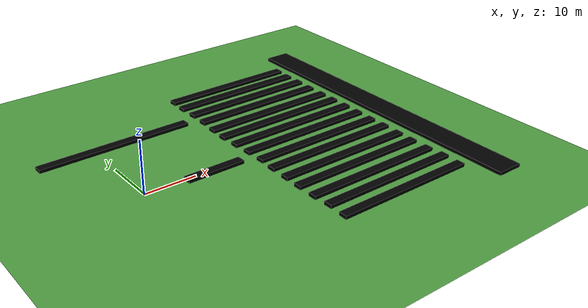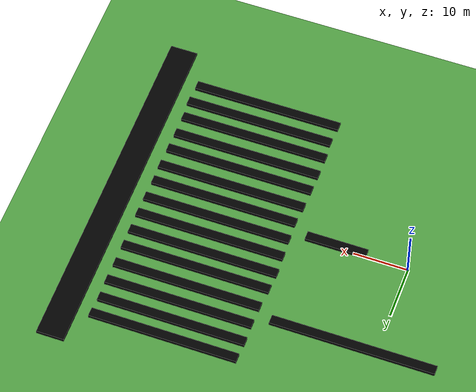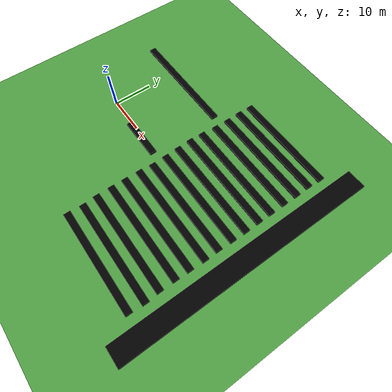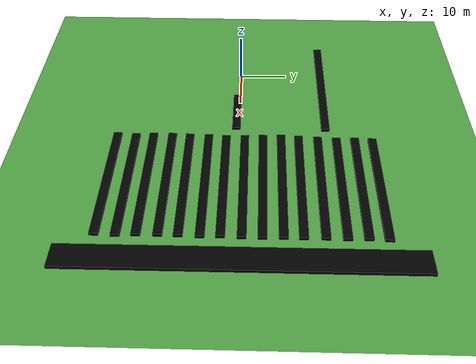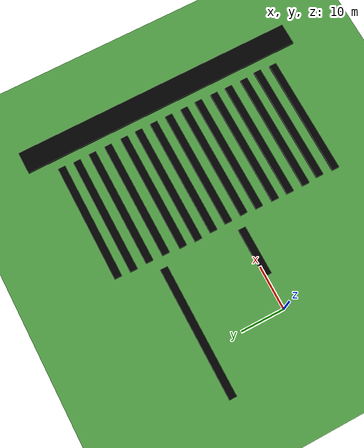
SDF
<sdf version="1.6">
 <world name="default">
  <model name="ground_plane">
   <static>1</static>
   <link name="link">
    <collision name="collision">
     <geometry><plane><normal>0 0 1</normal><size>120 120</size></plane></geometry>
     <surface><friction><ode><mu>100</mu><mu2>50</mu2></ode></friction></surface>
    </collision>
    <visual name="visual">
     <cast_shadows>0</cast_shadows>
     <geometry><plane><normal>0 0 1</normal><size>120 120</size></plane></geometry>
     <material>
      <script><uri>file://media/materials/scripts/gazebo.material</uri><name>Gazebo/Grass</name></script>
     </material>
    </visual>
   </link>
  </model>
  <model name="crop_01_8_clone_0_clone_0_clone_1_clone_clone_clone_clone">
   <link name="crop_01_0::link_0">
    <inertial>
     <mass>10.9148</mass>
     <inertia><ixx>13.7036</ixx><ixy>0</ixy><ixz>0</ixz><iyy>702.087</iyy><iyz>0</iyz><izz>715.772</izz></inertia>
    </inertial>
    <visual name="visual">
     <geometry><box><size>30 1.68705 1</size></box></geometry>
     <material>
      <ambient>0 1 0 1</ambient>
      <diffuse>0 0 0 1</diffuse>
      <specular>0.1 0.1 0.1 1</specular>
      <emissive>0 0 0 0</emissive>
     </material>
    </visual>
    <collision name="collision">
     <geometry><box><size>30 1.68705 1</size></box></geometry>
     <surface>
      <friction>
       <ode><mu>1</mu><mu2>1</mu2><fdir1>0 0 0</fdir1><slip1>0</slip1><slip2>0</slip2></ode>
       <torsional>
        <coefficient>1</coefficient>
        <patch_radius>0</patch_radius>
        <surface_radius>0</surface_radius>
        <use_patch_radius>1</use_patch_radius>
        <ode><slip>0</slip></ode>
       </torsional>
      </friction>
      <bounce><restitution_coefficient>0</restitution_coefficient><threshold>1e+06</threshold></bounce>
      <contact>
       <collide_without_contact>0</collide_without_contact>
       <collide_without_contact_bitmask>1</collide_without_contact_bitmask>
       <collide_bitmask>1</collide_bitmask>
       <ode>
        <soft_cfm>0</soft_cfm>
        <soft_erp>0.2</soft_erp>
        <kp>1e+13</kp>
        <kd>1</kd>
        <max_vel>0.01</max_vel>
        <min_depth>0</min_depth>
       </ode>
       <bullet>
        <split_impulse>1</split_impulse>
        <split_impulse_penetration_threshold>-0.01</split_impulse_penetration_threshold>
        <soft_cfm>0</soft_cfm>
        <soft_erp>0.2</soft_erp>
        <kp>1e+13</kp>
        <kd>1</kd>
       </bullet>
      </contact>
     </surface>
    </collision>
   </link>
   <static>1</static>
   <pose>4.16243 17.9486 0.050638 0 -0 0</pose>
  </model>
  <model name="crop_01_8_clone_0_clone_0_clone_1_clone_clone_clone_clone_0_clone_14">
   <link name="crop_01_0::link_0">
    <inertial>
     <mass>10.9148</mass>
     <inertia><ixx>13.7036</ixx><ixy>0</ixy><ixz>0</ixz><iyy>702.087</iyy><iyz>0</iyz><izz>715.772</izz></inertia>
    </inertial>
    <visual name="visual">
     <geometry><box><size>27.2326 1.68705 1</size></box></geometry>
     <material>
      <ambient>0 1 0 1</ambient>
      <diffuse>0 0 0 1</diffuse>
      <specular>0.1 0.1 0.1 1</specular>
      <emissive>0 0 0 0</emissive>
     </material>
    </visual>
    <collision name="collision">
     <geometry><box><size>27.2326 1.68705 1</size></box></geometry>
     <surface>
      <friction>
       <ode><mu>1</mu><mu2>1</mu2><fdir1>0 0 0</fdir1><slip1>0</slip1><slip2>0</slip2></ode>
       <torsional>
        <coefficient>1</coefficient>
        <patch_radius>0</patch_radius>
        <surface_radius>0</surface_radius>
        <use_patch_radius>1</use_patch_radius>
        <ode><slip>0</slip></ode>
       </torsional>
      </friction>
      <bounce><restitution_coefficient>0</restitution_coefficient><threshold>1e+06</threshold></bounce>
      <contact>
       <collide_without_contact>0</collide_without_contact>
       <collide_without_contact_bitmask>1</collide_without_contact_bitmask>
       <collide_bitmask>1</collide_bitmask>
       <ode>
        <soft_cfm>0</soft_cfm>
        <soft_erp>0.2</soft_erp>
        <kp>1e+13</kp>
        <kd>1</kd>
        <max_vel>0.01</max_vel>
        <min_depth>0</min_depth>
       </ode>
       <bullet>
        <split_impulse>1</split_impulse>
        <split_impulse_penetration_threshold>-0.01</split_impulse_penetration_threshold>
        <soft_cfm>0</soft_cfm>
        <soft_erp>0.2</soft_erp>
        <kp>1e+13</kp>
        <kd>1</kd>
       </bullet>
      </contact>
     </surface>
    </collision>
   </link>
   <static>1</static>
   <pose>35.2434 -2.53367 0.050638 0 -0 0</pose>
  </model>
  <model name="crop_01_8_clone_0_clone_0_clone_1_clone_clone_clone_clone_0_clone_16">
   <link name="crop_01_0::link_0">
    <inertial>
     <mass>10.9148</mass>
     <inertia><ixx>13.7036</ixx><ixy>0</ixy><ixz>0</ixz><iyy>702.087</iyy><iyz>0</iyz><izz>715.772</izz></inertia>
    </inertial>
    <visual name="visual">
     <geometry><box><size>27.4635 1.68705 1</size></box></geometry>
     <material>
      <ambient>0 1 0 1</ambient>
      <diffuse>0 0 0 1</diffuse>
      <specular>0.1 0.1 0.1 1</specular>
      <emissive>0 0 0 0</emissive>
     </material>
    </visual>
    <collision name="collision">
     <geometry><box><size>27.4635 1.68705 1</size></box></geometry>
     <surface>
      <friction>
       <ode><mu>1</mu><mu2>1</mu2><fdir1>0 0 0</fdir1><slip1>0</slip1><slip2>0</slip2></ode>
       <torsional>
        <coefficient>1</coefficient>
        <patch_radius>0</patch_radius>
        <surface_radius>0</surface_radius>
        <use_patch_radius>1</use_patch_radius>
        <ode><slip>0</slip></ode>
       </torsional>
      </friction>
      <bounce><restitution_coefficient>0</restitution_coefficient><threshold>1e+06</threshold></bounce>
      <contact>
       <collide_without_contact>0</collide_without_contact>
       <collide_without_contact_bitmask>1</collide_without_contact_bitmask>
       <collide_bitmask>1</collide_bitmask>
       <ode>
        <soft_cfm>0</soft_cfm>
        <soft_erp>0.2</soft_erp>
        <kp>1e+13</kp>
        <kd>1</kd>
        <max_vel>0.01</max_vel>
        <min_depth>0</min_depth>
       </ode>
       <bullet>
        <split_impulse>1</split_impulse>
        <split_impulse_penetration_threshold>-0.01</split_impulse_penetration_threshold>
        <soft_cfm>0</soft_cfm>
        <soft_erp>0.2</soft_erp>
        <kp>1e+13</kp>
        <kd>1</kd>
       </bullet>
      </contact>
     </surface>
    </collision>
   </link>
   <static>1</static>
   <pose>35.2291 1.25304 0.050638 0 -0 0</pose>
  </model>
  <model name="crop_01_8_clone_0_clone_0_clone_1_clone_clone_clone_clone_0_clone_17">
   <link name="crop_01_0::link_0">
    <inertial>
     <mass>10.9148</mass>
     <inertia><ixx>13.7036</ixx><ixy>0</ixy><ixz>0</ixz><iyy>702.087</iyy><iyz>0</iyz><izz>715.772</izz></inertia>
    </inertial>
    <visual name="visual">
     <geometry><box><size>27.6781 1.68705 1</size></box></geometry>
     <material>
      <ambient>0 1 0 1</ambient>
      <diffuse>0 0 0 1</diffuse>
      <specular>0.1 0.1 0.1 1</specular>
      <emissive>0 0 0 0</emissive>
     </material>
    </visual>
    <collision name="collision">
     <geometry><box><size>27.6781 1.68705 1</size></box></geometry>
     <surface>
      <friction>
       <ode><mu>1</mu><mu2>1</mu2><fdir1>0 0 0</fdir1><slip1>0</slip1><slip2>0</slip2></ode>
       <torsional>
        <coefficient>1</coefficient>
        <patch_radius>0</patch_radius>
        <surface_radius>0</surface_radius>
        <use_patch_radius>1</use_patch_radius>
        <ode><slip>0</slip></ode>
       </torsional>
      </friction>
      <bounce><restitution_coefficient>0</restitution_coefficient><threshold>1e+06</threshold></bounce>
      <contact>
       <collide_without_contact>0</collide_without_contact>
       <collide_without_contact_bitmask>1</collide_without_contact_bitmask>
       <collide_bitmask>1</collide_bitmask>
       <ode>
        <soft_cfm>0</soft_cfm>
        <soft_erp>0.2</soft_erp>
        <kp>1e+13</kp>
        <kd>1</kd>
        <max_vel>0.01</max_vel>
        <min_depth>0</min_depth>
       </ode>
       <bullet>
        <split_impulse>1</split_impulse>
        <split_impulse_penetration_threshold>-0.01</split_impulse_penetration_threshold>
        <soft_cfm>0</soft_cfm>
        <soft_erp>0.2</soft_erp>
        <kp>1e+13</kp>
        <kd>1</kd>
       </bullet>
      </contact>
     </surface>
    </collision>
   </link>
   <static>1</static>
   <pose>35.1548 4.94496 0.050638 0 -0 0</pose>
  </model>
  <model name="crop_01_8_clone_0_clone_0_clone_1_clone_clone_clone_clone_0_clone_18">
   <link name="crop_01_0::link_0">
    <inertial>
     <mass>10.9148</mass>
     <inertia><ixx>13.7036</ixx><ixy>0</ixy><ixz>0</ixz><iyy>702.087</iyy><iyz>0</iyz><izz>715.772</izz></inertia>
    </inertial>
    <visual name="visual">
     <geometry><box><size>27.7983 1.68705 1</size></box></geometry>
     <material>
      <ambient>0 1 0 1</ambient>
      <diffuse>0 0 0 1</diffuse>
      <specular>0.1 0.1 0.1 1</specular>
      <emissive>0 0 0 0</emissive>
     </material>
    </visual>
    <collision name="collision">
     <geometry><box><size>27.7983 1.68705 1</size></box></geometry>
     <surface>
      <friction>
       <ode><mu>1</mu><mu2>1</mu2><fdir1>0 0 0</fdir1><slip1>0</slip1><slip2>0</slip2></ode>
       <torsional>
        <coefficient>1</coefficient>
        <patch_radius>0</patch_radius>
        <surface_radius>0</surface_radius>
        <use_patch_radius>1</use_patch_radius>
        <ode><slip>0</slip></ode>
       </torsional>
      </friction>
      <bounce><restitution_coefficient>0</restitution_coefficient><threshold>1e+06</threshold></bounce>
      <contact>
       <collide_without_contact>0</collide_without_contact>
       <collide_without_contact_bitmask>1</collide_without_contact_bitmask>
       <collide_bitmask>1</collide_bitmask>
       <ode>
        <soft_cfm>0</soft_cfm>
        <soft_erp>0.2</soft_erp>
        <kp>1e+13</kp>
        <kd>1</kd>
        <max_vel>0.01</max_vel>
        <min_depth>0</min_depth>
       </ode>
       <bullet>
        <split_impulse>1</split_impulse>
        <split_impulse_penetration_threshold>-0.01</split_impulse_penetration_threshold>
        <soft_cfm>0</soft_cfm>
        <soft_erp>0.2</soft_erp>
        <kp>1e+13</kp>
        <kd>1</kd>
       </bullet>
      </contact>
     </surface>
    </collision>
   </link>
   <static>1</static>
   <pose>35.0428 8.67263 0.050638 0 -0 0</pose>
  </model>
  <model name="crop_01_8_clone_0_clone_0_clone_1_clone_clone_clone_clone_0_clone_19">
   <link name="crop_01_0::link_0">
    <inertial>
     <mass>10.9148</mass>
     <inertia><ixx>13.7036</ixx><ixy>0</ixy><ixz>0</ixz><iyy>702.087</iyy><iyz>0</iyz><izz>715.772</izz></inertia>
    </inertial>
    <visual name="visual">
     <geometry><box><size>27.5929 1.68705 1</size></box></geometry>
     <material>
      <ambient>0 1 0 1</ambient>
      <diffuse>0 0 0 1</diffuse>
      <specular>0.1 0.1 0.1 1</specular>
      <emissive>0 0 0 0</emissive>
     </material>
    </visual>
    <collision name="collision">
     <geometry><box><size>27.5929 1.68705 1</size></box></geometry>
     <surface>
      <friction>
       <ode><mu>1</mu><mu2>1</mu2><fdir1>0 0 0</fdir1><slip1>0</slip1><slip2>0</slip2></ode>
       <torsional>
        <coefficient>1</coefficient>
        <patch_radius>0</patch_radius>
        <surface_radius>0</surface_radius>
        <use_patch_radius>1</use_patch_radius>
        <ode><slip>0</slip></ode>
       </torsional>
      </friction>
      <bounce><restitution_coefficient>0</restitution_coefficient><threshold>1e+06</threshold></bounce>
      <contact>
       <collide_without_contact>0</collide_without_contact>
       <collide_without_contact_bitmask>1</collide_without_contact_bitmask>
       <collide_bitmask>1</collide_bitmask>
       <ode>
        <soft_cfm>0</soft_cfm>
        <soft_erp>0.2</soft_erp>
        <kp>1e+13</kp>
        <kd>1</kd>
        <max_vel>0.01</max_vel>
        <min_depth>0</min_depth>
       </ode>
       <bullet>
        <split_impulse>1</split_impulse>
        <split_impulse_penetration_threshold>-0.01</split_impulse_penetration_threshold>
        <soft_cfm>0</soft_cfm>
        <soft_erp>0.2</soft_erp>
        <kp>1e+13</kp>
        <kd>1</kd>
       </bullet>
      </contact>
     </surface>
    </collision>
   </link>
   <static>1</static>
   <pose>35.1291 12.2231 0.050638 0 -0 0</pose>
  </model>
  <model name="crop_01_8_clone_0_clone_0_clone_1_clone_clone_clone_clone_0_clone_21">
   <link name="crop_01_0::link_0">
    <inertial>
     <mass>10.9148</mass>
     <inertia><ixx>13.7036</ixx><ixy>0</ixy><ixz>0</ixz><iyy>702.087</iyy><iyz>0</iyz><izz>715.772</izz></inertia>
    </inertial>
    <visual name="visual">
     <geometry><box><size>27.2401 1.68705 1</size></box></geometry>
     <material>
      <ambient>0 1 0 1</ambient>
      <diffuse>0 0 0 1</diffuse>
      <specular>0.1 0.1 0.1 1</specular>
      <emissive>0 0 0 0</emissive>
     </material>
    </visual>
    <collision name="collision">
     <geometry><box><size>27.2401 1.68705 1</size></box></geometry>
     <surface>
      <friction>
       <ode><mu>1</mu><mu2>1</mu2><fdir1>0 0 0</fdir1><slip1>0</slip1><slip2>0</slip2></ode>
       <torsional>
        <coefficient>1</coefficient>
        <patch_radius>0</patch_radius>
        <surface_radius>0</surface_radius>
        <use_patch_radius>1</use_patch_radius>
        <ode><slip>0</slip></ode>
       </torsional>
      </friction>
      <bounce><restitution_coefficient>0</restitution_coefficient><threshold>1e+06</threshold></bounce>
      <contact>
       <collide_without_contact>0</collide_without_contact>
       <collide_without_contact_bitmask>1</collide_without_contact_bitmask>
       <collide_bitmask>1</collide_bitmask>
       <ode>
        <soft_cfm>0</soft_cfm>
        <soft_erp>0.2</soft_erp>
        <kp>1e+13</kp>
        <kd>1</kd>
        <max_vel>0.01</max_vel>
        <min_depth>0</min_depth>
       </ode>
       <bullet>
        <split_impulse>1</split_impulse>
        <split_impulse_penetration_threshold>-0.01</split_impulse_penetration_threshold>
        <soft_cfm>0</soft_cfm>
        <soft_erp>0.2</soft_erp>
        <kp>1e+13</kp>
        <kd>1</kd>
       </bullet>
      </contact>
     </surface>
    </collision>
   </link>
   <static>1</static>
   <pose>35.2717 16.1362 0.050638 0 -0 0</pose>
  </model>
  <model name="crop_01_8_clone_0_clone_0_clone_1_clone_clone_clone_clone_0_clone_22">
   <link name="crop_01_0::link_0">
    <inertial>
     <mass>10.9148</mass>
     <inertia><ixx>13.7036</ixx><ixy>0</ixy><ixz>0</ixz><iyy>702.087</iyy><iyz>0</iyz><izz>715.772</izz></inertia>
    </inertial>
    <visual name="visual">
     <geometry><box><size>27.2096 1.68705 1</size></box></geometry>
     <material>
      <ambient>0 1 0 1</ambient>
      <diffuse>0 0 0 1</diffuse>
      <specular>0.1 0.1 0.1 1</specular>
      <emissive>0 0 0 0</emissive>
     </material>
    </visual>
    <collision name="collision">
     <geometry><box><size>27.2096 1.68705 1</size></box></geometry>
     <surface>
      <friction>
       <ode><mu>1</mu><mu2>1</mu2><fdir1>0 0 0</fdir1><slip1>0</slip1><slip2>0</slip2></ode>
       <torsional>
        <coefficient>1</coefficient>
        <patch_radius>0</patch_radius>
        <surface_radius>0</surface_radius>
        <use_patch_radius>1</use_patch_radius>
        <ode><slip>0</slip></ode>
       </torsional>
      </friction>
      <bounce><restitution_coefficient>0</restitution_coefficient><threshold>1e+06</threshold></bounce>
      <contact>
       <collide_without_contact>0</collide_without_contact>
       <collide_without_contact_bitmask>1</collide_without_contact_bitmask>
       <collide_bitmask>1</collide_bitmask>
       <ode>
        <soft_cfm>0</soft_cfm>
        <soft_erp>0.2</soft_erp>
        <kp>1e+13</kp>
        <kd>1</kd>
        <max_vel>0.01</max_vel>
        <min_depth>0</min_depth>
       </ode>
       <bullet>
        <split_impulse>1</split_impulse>
        <split_impulse_penetration_threshold>-0.01</split_impulse_penetration_threshold>
        <soft_cfm>0</soft_cfm>
        <soft_erp>0.2</soft_erp>
        <kp>1e+13</kp>
        <kd>1</kd>
       </bullet>
      </contact>
     </surface>
    </collision>
   </link>
   <static>1</static>
   <pose>35.349 19.9377 0.050638 0 -0 0</pose>
  </model>
  <model name="crop_01_8_clone_0_clone_0_clone_1_clone_clone_clone_clone_0_clone_24">
   <link name="crop_01_0::link_0">
    <inertial>
     <mass>10.9148</mass>
     <inertia><ixx>13.7036</ixx><ixy>0</ixy><ixz>0</ixz><iyy>702.087</iyy><iyz>0</iyz><izz>715.772</izz></inertia>
    </inertial>
    <visual name="visual">
     <geometry><box><size>27.1998 1.68705 1</size></box></geometry>
     <material>
      <ambient>0 1 0 1</ambient>
      <diffuse>0 0 0 1</diffuse>
      <specular>0.1 0.1 0.1 1</specular>
      <emissive>0 0 0 0</emissive>
     </material>
    </visual>
    <collision name="collision">
     <geometry><box><size>27.1998 1.68705 1</size></box></geometry>
     <surface>
      <friction>
       <ode><mu>1</mu><mu2>1</mu2><fdir1>0 0 0</fdir1><slip1>0</slip1><slip2>0</slip2></ode>
       <torsional>
        <coefficient>1</coefficient>
        <patch_radius>0</patch_radius>
        <surface_radius>0</surface_radius>
        <use_patch_radius>1</use_patch_radius>
        <ode><slip>0</slip></ode>
       </torsional>
      </friction>
      <bounce><restitution_coefficient>0</restitution_coefficient><threshold>1e+06</threshold></bounce>
      <contact>
       <collide_without_contact>0</collide_without_contact>
       <collide_without_contact_bitmask>1</collide_without_contact_bitmask>
       <collide_bitmask>1</collide_bitmask>
       <ode>
        <soft_cfm>0</soft_cfm>
        <soft_erp>0.2</soft_erp>
        <kp>1e+13</kp>
        <kd>1</kd>
        <max_vel>0.01</max_vel>
        <min_depth>0</min_depth>
       </ode>
       <bullet>
        <split_impulse>1</split_impulse>
        <split_impulse_penetration_threshold>-0.01</split_impulse_penetration_threshold>
        <soft_cfm>0</soft_cfm>
        <soft_erp>0.2</soft_erp>
        <kp>1e+13</kp>
        <kd>1</kd>
       </bullet>
      </contact>
     </surface>
    </collision>
   </link>
   <static>1</static>
   <pose>35.4426 27.2396 0.050638 0 -0 0</pose>
  </model>
  <model name="crop_01_8_clone_0_clone_0_clone_1_clone_clone_clone_clone_0_clone_46_clone_1">
   <link name="crop_01_0::link_0">
    <inertial>
     <mass>10.9148</mass>
     <inertia><ixx>13.7036</ixx><ixy>0</ixy><ixz>0</ixz><iyy>702.087</iyy><iyz>0</iyz><izz>715.772</izz></inertia>
    </inertial>
    <visual name="visual">
     <geometry><box><size>65.8071 5.06569 1</size></box></geometry>
     <material>
      <ambient>0 1 0 1</ambient>
      <diffuse>0 0 0 1</diffuse>
      <specular>0.1 0.1 0.1 1</specular>
      <emissive>0 0 0 0</emissive>
     </material>
    </visual>
    <collision name="collision">
     <geometry><box><size>65.8071 5.06569 1</size></box></geometry>
     <surface>
      <friction>
       <ode><mu>1</mu><mu2>1</mu2><fdir1>0 0 0</fdir1><slip1>0</slip1><slip2>0</slip2></ode>
       <torsional>
        <coefficient>1</coefficient>
        <patch_radius>0</patch_radius>
        <surface_radius>0</surface_radius>
        <use_patch_radius>1</use_patch_radius>
        <ode><slip>0</slip></ode>
       </torsional>
      </friction>
      <bounce><restitution_coefficient>0</restitution_coefficient><threshold>1e+06</threshold></bounce>
      <contact>
       <collide_without_contact>0</collide_without_contact>
       <collide_without_contact_bitmask>1</collide_without_contact_bitmask>
       <collide_bitmask>1</collide_bitmask>
       <ode>
        <soft_cfm>0</soft_cfm>
        <soft_erp>0.2</soft_erp>
        <kp>1e+13</kp>
        <kd>1</kd>
        <max_vel>0.01</max_vel>
        <min_depth>0</min_depth>
       </ode>
       <bullet>
        <split_impulse>1</split_impulse>
        <split_impulse_penetration_threshold>-0.01</split_impulse_penetration_threshold>
        <soft_cfm>0</soft_cfm>
        <soft_erp>0.2</soft_erp>
        <kp>1e+13</kp>
        <kd>1</kd>
       </bullet>
      </contact>
     </surface>
    </collision>
   </link>
   <static>1</static>
   <pose>53.7966 1.19614 0.050638 0 -0 1.57201</pose>
  </model>
  <model name="crop_01_8_clone_0_clone_0_clone_clone_0">
   <link name="crop_01_0::link_0">
    <inertial>
     <mass>10.9148</mass>
     <inertia><ixx>13.7036</ixx><ixy>0</ixy><ixz>0</ixz><iyy>702.087</iyy><iyz>0</iyz><izz>715.772</izz></inertia>
    </inertial>
    <visual name="visual">
     <geometry><box><size>11.274 1.68705 1</size></box></geometry>
     <material>
      <ambient>0 1 0 1</ambient>
      <diffuse>0 0 0 1</diffuse>
      <specular>0.1 0.1 0.1 1</specular>
      <emissive>0 0 0 0</emissive>
     </material>
    </visual>
    <collision name="collision">
     <geometry><box><size>11.274 1.68705 1</size></box></geometry>
     <surface>
      <friction>
       <ode><mu>1</mu><mu2>1</mu2><fdir1>0 0 0</fdir1><slip1>0</slip1><slip2>0</slip2></ode>
       <torsional>
        <coefficient>1</coefficient>
        <patch_radius>0</patch_radius>
        <surface_radius>0</surface_radius>
        <use_patch_radius>1</use_patch_radius>
        <ode><slip>0</slip></ode>
       </torsional>
      </friction>
      <bounce><restitution_coefficient>0</restitution_coefficient><threshold>1e+06</threshold></bounce>
      <contact>
       <collide_without_contact>0</collide_without_contact>
       <collide_without_contact_bitmask>1</collide_without_contact_bitmask>
       <collide_bitmask>1</collide_bitmask>
       <ode>
        <soft_cfm>0</soft_cfm>
        <soft_erp>0.2</soft_erp>
        <kp>1e+13</kp>
        <kd>1</kd>
        <max_vel>0.01</max_vel>
        <min_depth>0</min_depth>
       </ode>
       <bullet>
        <split_impulse>1</split_impulse>
        <split_impulse_penetration_threshold>-0.01</split_impulse_penetration_threshold>
        <soft_cfm>0</soft_cfm>
        <soft_erp>0.2</soft_erp>
        <kp>1e+13</kp>
        <kd>1</kd>
       </bullet>
      </contact>
     </surface>
    </collision>
   </link>
   <static>1</static>
   <pose>13.4072 -0.571304 0.050638 0 -0 0</pose>
  </model>
  <model name="crop_01_8_clone_0_clone_0_clone_1_clone_clone_clone_clone_0_clone_24_clone">
   <link name="crop_01_0::link_0">
    <inertial>
     <mass>10.9148</mass>
     <inertia><ixx>13.7036</ixx><ixy>0</ixy><ixz>0</ixz><iyy>702.087</iyy><iyz>0</iyz><izz>715.772</izz></inertia>
    </inertial>
    <visual name="visual">
     <geometry><box><size>27.1998 1.68705 1</size></box></geometry>
     <material>
      <ambient>0 1 0 1</ambient>
      <diffuse>0 0 0 1</diffuse>
      <specular>0.1 0.1 0.1 1</specular>
      <emissive>0 0 0 0</emissive>
     </material>
    </visual>
    <collision name="collision">
     <geometry><box><size>27.1998 1.68705 1</size></box></geometry>
     <surface>
      <friction>
       <ode><mu>1</mu><mu2>1</mu2><fdir1>0 0 0</fdir1><slip1>0</slip1><slip2>0</slip2></ode>
       <torsional>
        <coefficient>1</coefficient>
        <patch_radius>0</patch_radius>
        <surface_radius>0</surface_radius>
        <use_patch_radius>1</use_patch_radius>
        <ode><slip>0</slip></ode>
       </torsional>
      </friction>
      <bounce><restitution_coefficient>0</restitution_coefficient><threshold>1e+06</threshold></bounce>
      <contact>
       <collide_without_contact>0</collide_without_contact>
       <collide_without_contact_bitmask>1</collide_without_contact_bitmask>
       <collide_bitmask>1</collide_bitmask>
       <ode>
        <soft_cfm>0</soft_cfm>
        <soft_erp>0.2</soft_erp>
        <kp>1e+13</kp>
        <kd>1</kd>
        <max_vel>0.01</max_vel>
        <min_depth>0</min_depth>
       </ode>
       <bullet>
        <split_impulse>1</split_impulse>
        <split_impulse_penetration_threshold>-0.01</split_impulse_penetration_threshold>
        <soft_cfm>0</soft_cfm>
        <soft_erp>0.2</soft_erp>
        <kp>1e+13</kp>
        <kd>1</kd>
       </bullet>
      </contact>
     </surface>
    </collision>
   </link>
   <static>1</static>
   <pose>35.2554 23.6815 0.050638 0 -0 0</pose>
  </model>
  <model name="crop_01_8_clone_0_clone_0_clone_1_clone_clone_clone_clone_0_clone_19_clone">
   <link name="crop_01_0::link_0">
    <inertial>
     <mass>10.9148</mass>
     <inertia><ixx>13.7036</ixx><ixy>0</ixy><ixz>0</ixz><iyy>702.087</iyy><iyz>0</iyz><izz>715.772</izz></inertia>
    </inertial>
    <visual name="visual">
     <geometry><box><size>27.5929 1.68705 1</size></box></geometry>
     <material>
      <ambient>0 1 0 1</ambient>
      <diffuse>0 0 0 1</diffuse>
      <specular>0.1 0.1 0.1 1</specular>
      <emissive>0 0 0 0</emissive>
     </material>
    </visual>
    <collision name="collision">
     <geometry><box><size>27.5929 1.68705 1</size></box></geometry>
     <surface>
      <friction>
       <ode><mu>1</mu><mu2>1</mu2><fdir1>0 0 0</fdir1><slip1>0</slip1><slip2>0</slip2></ode>
       <torsional>
        <coefficient>1</coefficient>
        <patch_radius>0</patch_radius>
        <surface_radius>0</surface_radius>
        <use_patch_radius>1</use_patch_radius>
        <ode><slip>0</slip></ode>
       </torsional>
      </friction>
      <bounce><restitution_coefficient>0</restitution_coefficient><threshold>1e+06</threshold></bounce>
      <contact>
       <collide_without_contact>0</collide_without_contact>
       <collide_without_contact_bitmask>1</collide_without_contact_bitmask>
       <collide_bitmask>1</collide_bitmask>
       <ode>
        <soft_cfm>0</soft_cfm>
        <soft_erp>0.2</soft_erp>
        <kp>1e+13</kp>
        <kd>1</kd>
        <max_vel>0.01</max_vel>
        <min_depth>0</min_depth>
       </ode>
       <bullet>
        <split_impulse>1</split_impulse>
        <split_impulse_penetration_threshold>-0.01</split_impulse_penetration_threshold>
        <soft_cfm>0</soft_cfm>
        <soft_erp>0.2</soft_erp>
        <kp>1e+13</kp>
        <kd>1</kd>
       </bullet>
      </contact>
     </surface>
    </collision>
   </link>
   <static>1</static>
   <pose>35.1454 -6.13609 0.050638 0 -0 0</pose>
  </model>
  <model name="crop_01_8_clone_0_clone_0_clone_1_clone_clone_clone_clone_0_clone_19_clone_clone">
   <link name="crop_01_0::link_0">
    <inertial>
     <mass>10.9148</mass>
     <inertia><ixx>13.7036</ixx><ixy>0</ixy><ixz>0</ixz><iyy>702.087</iyy><iyz>0</iyz><izz>715.772</izz></inertia>
    </inertial>
    <visual name="visual">
     <geometry><box><size>27.5929 1.68705 1</size></box></geometry>
     <material>
      <ambient>0 1 0 1</ambient>
      <diffuse>0 0 0 1</diffuse>
      <specular>0.1 0.1 0.1 1</specular>
      <emissive>0 0 0 0</emissive>
     </material>
    </visual>
    <collision name="collision">
     <geometry><box><size>27.5929 1.68705 1</size></box></geometry>
     <surface>
      <friction>
       <ode><mu>1</mu><mu2>1</mu2><fdir1>0 0 0</fdir1><slip1>0</slip1><slip2>0</slip2></ode>
       <torsional>
        <coefficient>1</coefficient>
        <patch_radius>0</patch_radius>
        <surface_radius>0</surface_radius>
        <use_patch_radius>1</use_patch_radius>
        <ode><slip>0</slip></ode>
       </torsional>
      </friction>
      <bounce><restitution_coefficient>0</restitution_coefficient><threshold>1e+06</threshold></bounce>
      <contact>
       <collide_without_contact>0</collide_without_contact>
       <collide_without_contact_bitmask>1</collide_without_contact_bitmask>
       <collide_bitmask>1</collide_bitmask>
       <ode>
        <soft_cfm>0</soft_cfm>
        <soft_erp>0.2</soft_erp>
        <kp>1e+13</kp>
        <kd>1</kd>
        <max_vel>0.01</max_vel>
        <min_depth>0</min_depth>
       </ode>
       <bullet>
        <split_impulse>1</split_impulse>
        <split_impulse_penetration_threshold>-0.01</split_impulse_penetration_threshold>
        <soft_cfm>0</soft_cfm>
        <soft_erp>0.2</soft_erp>
        <kp>1e+13</kp>
        <kd>1</kd>
       </bullet>
      </contact>
     </surface>
    </collision>
   </link>
   <static>1</static>
   <pose>35.0493 -10.0071 0.050638 0 -0 0</pose>
  </model>
  <model name="crop_01_8_clone_0_clone_0_clone_1_clone_clone_clone_clone_0_clone_19_clone_clone_0">
   <link name="crop_01_0::link_0">
    <inertial>
     <mass>10.9148</mass>
     <inertia><ixx>13.7036</ixx><ixy>0</ixy><ixz>0</ixz><iyy>702.087</iyy><iyz>0</iyz><izz>715.772</izz></inertia>
    </inertial>
    <visual name="visual">
     <geometry><box><size>27.5929 1.68705 1</size></box></geometry>
     <material>
      <ambient>0 1 0 1</ambient>
      <diffuse>0 0 0 1</diffuse>
      <specular>0.1 0.1 0.1 1</specular>
      <emissive>0 0 0 0</emissive>
     </material>
    </visual>
    <collision name="collision">
     <geometry><box><size>27.5929 1.68705 1</size></box></geometry>
     <surface>
      <friction>
       <ode><mu>1</mu><mu2>1</mu2><fdir1>0 0 0</fdir1><slip1>0</slip1><slip2>0</slip2></ode>
       <torsional>
        <coefficient>1</coefficient>
        <patch_radius>0</patch_radius>
        <surface_radius>0</surface_radius>
        <use_patch_radius>1</use_patch_radius>
        <ode><slip>0</slip></ode>
       </torsional>
      </friction>
      <bounce><restitution_coefficient>0</restitution_coefficient><threshold>1e+06</threshold></bounce>
      <contact>
       <collide_without_contact>0</collide_without_contact>
       <collide_without_contact_bitmask>1</collide_without_contact_bitmask>
       <collide_bitmask>1</collide_bitmask>
       <ode>
        <soft_cfm>0</soft_cfm>
        <soft_erp>0.2</soft_erp>
        <kp>1e+13</kp>
        <kd>1</kd>
        <max_vel>0.01</max_vel>
        <min_depth>0</min_depth>
       </ode>
       <bullet>
        <split_impulse>1</split_impulse>
        <split_impulse_penetration_threshold>-0.01</split_impulse_penetration_threshold>
        <soft_cfm>0</soft_cfm>
        <soft_erp>0.2</soft_erp>
        <kp>1e+13</kp>
        <kd>1</kd>
       </bullet>
      </contact>
     </surface>
    </collision>
   </link>
   <static>1</static>
   <pose>34.9689 -13.6237 0.050638 0 -0 0</pose>
  </model>
  <model name="crop_01_8_clone_0_clone_0_clone_1_clone_clone_clone_clone_0_clone_19_clone_clone_clone">
   <link name="crop_01_0::link_0">
    <inertial>
     <mass>10.9148</mass>
     <inertia><ixx>13.7036</ixx><ixy>0</ixy><ixz>0</ixz><iyy>702.087</iyy><iyz>0</iyz><izz>715.772</izz></inertia>
    </inertial>
    <visual name="visual">
     <geometry><box><size>27.5929 1.68705 1</size></box></geometry>
     <material>
      <ambient>0 1 0 1</ambient>
      <diffuse>0 0 0 1</diffuse>
      <specular>0.1 0.1 0.1 1</specular>
      <emissive>0 0 0 0</emissive>
     </material>
    </visual>
    <collision name="collision">
     <geometry><box><size>27.5929 1.68705 1</size></box></geometry>
     <surface>
      <friction>
       <ode><mu>1</mu><mu2>1</mu2><fdir1>0 0 0</fdir1><slip1>0</slip1><slip2>0</slip2></ode>
       <torsional>
        <coefficient>1</coefficient>
        <patch_radius>0</patch_radius>
        <surface_radius>0</surface_radius>
        <use_patch_radius>1</use_patch_radius>
        <ode><slip>0</slip></ode>
       </torsional>
      </friction>
      <bounce><restitution_coefficient>0</restitution_coefficient><threshold>1e+06</threshold></bounce>
      <contact>
       <collide_without_contact>0</collide_without_contact>
       <collide_without_contact_bitmask>1</collide_without_contact_bitmask>
       <collide_bitmask>1</collide_bitmask>
       <ode>
        <soft_cfm>0</soft_cfm>
        <soft_erp>0.2</soft_erp>
        <kp>1e+13</kp>
        <kd>1</kd>
        <max_vel>0.01</max_vel>
        <min_depth>0</min_depth>
       </ode>
       <bullet>
        <split_impulse>1</split_impulse>
        <split_impulse_penetration_threshold>-0.01</split_impulse_penetration_threshold>
        <soft_cfm>0</soft_cfm>
        <soft_erp>0.2</soft_erp>
        <kp>1e+13</kp>
        <kd>1</kd>
       </bullet>
      </contact>
     </surface>
    </collision>
   </link>
   <static>1</static>
   <pose>34.9686 -17.5099 0.050638 0 -0 0</pose>
  </model>
  <model name="crop_01_8_clone_0_clone_0_clone_1_clone_clone_clone_clone_0_clone_19_clone_clone_1">
   <link name="crop_01_0::link_0">
    <inertial>
     <mass>10.9148</mass>
     <inertia><ixx>13.7036</ixx><ixy>0</ixy><ixz>0</ixz><iyy>702.087</iyy><iyz>0</iyz><izz>715.772</izz></inertia>
    </inertial>
    <visual name="visual">
     <geometry><box><size>27.5929 1.68705 1</size></box></geometry>
     <material>
      <ambient>0 1 0 1</ambient>
      <diffuse>0 0 0 1</diffuse>
      <specular>0.1 0.1 0.1 1</specular>
      <emissive>0 0 0 0</emissive>
     </material>
    </visual>
    <collision name="collision">
     <geometry><box><size>27.5929 1.68705 1</size></box></geometry>
     <surface>
      <friction>
       <ode><mu>1</mu><mu2>1</mu2><fdir1>0 0 0</fdir1><slip1>0</slip1><slip2>0</slip2></ode>
       <torsional>
        <coefficient>1</coefficient>
        <patch_radius>0</patch_radius>
        <surface_radius>0</surface_radius>
        <use_patch_radius>1</use_patch_radius>
        <ode><slip>0</slip></ode>
       </torsional>
      </friction>
      <bounce><restitution_coefficient>0</restitution_coefficient><threshold>1e+06</threshold></bounce>
      <contact>
       <collide_without_contact>0</collide_without_contact>
       <collide_without_contact_bitmask>1</collide_without_contact_bitmask>
       <collide_bitmask>1</collide_bitmask>
       <ode>
        <soft_cfm>0</soft_cfm>
        <soft_erp>0.2</soft_erp>
        <kp>1e+13</kp>
        <kd>1</kd>
        <max_vel>0.01</max_vel>
        <min_depth>0</min_depth>
       </ode>
       <bullet>
        <split_impulse>1</split_impulse>
        <split_impulse_penetration_threshold>-0.01</split_impulse_penetration_threshold>
        <soft_cfm>0</soft_cfm>
        <soft_erp>0.2</soft_erp>
        <kp>1e+13</kp>
        <kd>1</kd>
       </bullet>
      </contact>
     </surface>
    </collision>
   </link>
   <static>1</static>
   <pose>35.2299 -21.1146 0.050638 0 -0 0</pose>
  </model>
  <model name="crop_01_8_clone_0_clone_0_clone_1_clone_clone_clone_clone_0_clone_19_clone_clone_clone_clone">
   <link name="crop_01_0::link_0">
    <inertial>
     <mass>10.9148</mass>
     <inertia><ixx>13.7036</ixx><ixy>0</ixy><ixz>0</ixz><iyy>702.087</iyy><iyz>0</iyz><izz>715.772</izz></inertia>
    </inertial>
    <visual name="visual">
     <geometry><box><size>27.5929 1.68705 1</size></box></geometry>
     <material>
      <ambient>0 1 0 1</ambient>
      <diffuse>0 0 0 1</diffuse>
      <specular>0.1 0.1 0.1 1</specular>
      <emissive>0 0 0 0</emissive>
     </material>
    </visual>
    <collision name="collision">
     <geometry><box><size>27.5929 1.68705 1</size></box></geometry>
     <surface>
      <friction>
       <ode><mu>1</mu><mu2>1</mu2><fdir1>0 0 0</fdir1><slip1>0</slip1><slip2>0</slip2></ode>
       <torsional>
        <coefficient>1</coefficient>
        <patch_radius>0</patch_radius>
        <surface_radius>0</surface_radius>
        <use_patch_radius>1</use_patch_radius>
        <ode><slip>0</slip></ode>
       </torsional>
      </friction>
      <bounce><restitution_coefficient>0</restitution_coefficient><threshold>1e+06</threshold></bounce>
      <contact>
       <collide_without_contact>0</collide_without_contact>
       <collide_without_contact_bitmask>1</collide_without_contact_bitmask>
       <collide_bitmask>1</collide_bitmask>
       <ode>
        <soft_cfm>0</soft_cfm>
        <soft_erp>0.2</soft_erp>
        <kp>1e+13</kp>
        <kd>1</kd>
        <max_vel>0.01</max_vel>
        <min_depth>0</min_depth>
       </ode>
       <bullet>
        <split_impulse>1</split_impulse>
        <split_impulse_penetration_threshold>-0.01</split_impulse_penetration_threshold>
        <soft_cfm>0</soft_cfm>
        <soft_erp>0.2</soft_erp>
        <kp>1e+13</kp>
        <kd>1</kd>
       </bullet>
      </contact>
     </surface>
    </collision>
   </link>
   <static>1</static>
   <pose>35.0208 -24.9356 0.050638 0 -0 0</pose>
  </model>
 </world>
</sdf>
